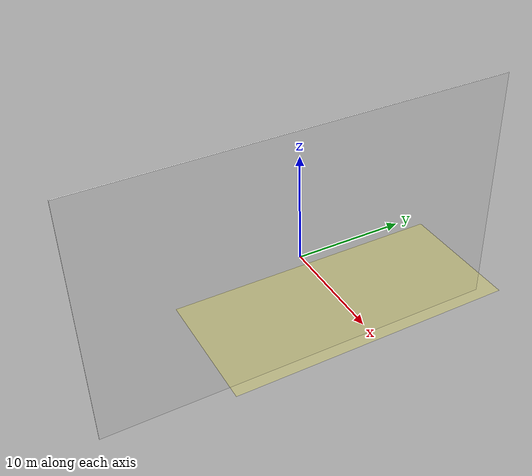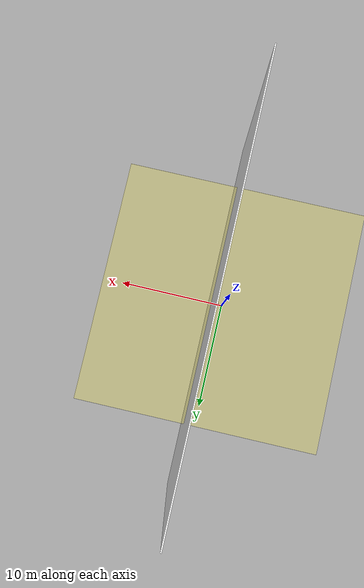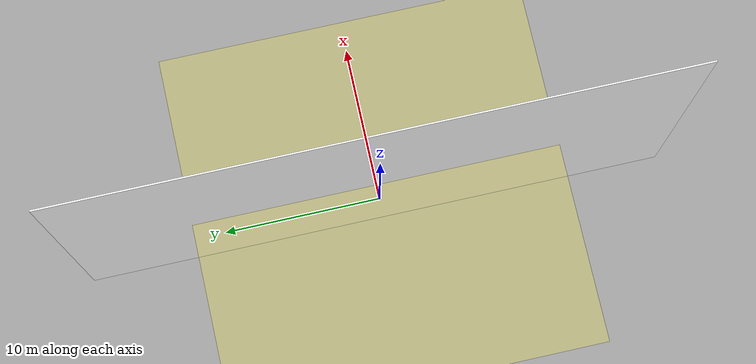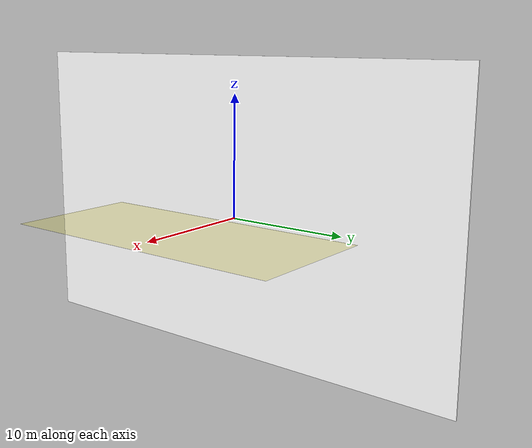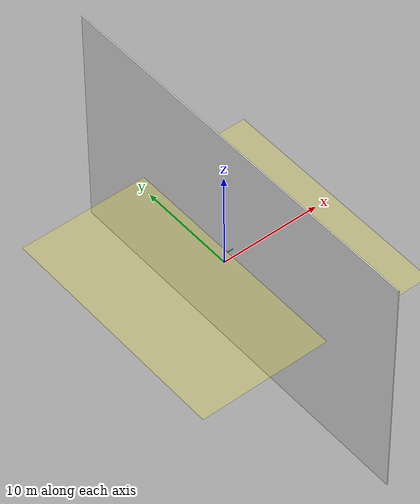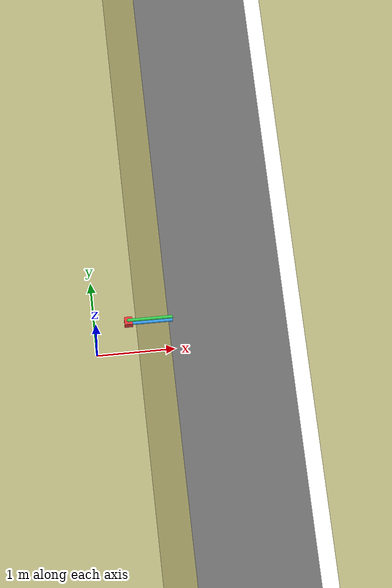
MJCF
<mujoco>
  <option timestep="0.005" gravity="0 0 -9.81"/>

  <worldbody>

    <!-- Floor  -->
    <geom type="plane" size="12 12 0.1"
          rgba="0.9 0.85 0.2 1"/>

    <!-- Wall  -->
    <geom type="box" size="0.05 20 12" pos="1.0 0 1"
          rgba="1.0 1.0 1.0 1" friction="1 1 1"/>

    <!-- Torso (red) -->
    <body name="torso" pos="0.404 0 1">
       <joint name="torso_slide_x" type="slide" axis="-1 0 0" damping="5"/>
      <joint name="torso_slide_z" type="slide" axis="0 0 1" damping="5"/>
      <geom type="box" size="0.05 0.05 0.05"
            rgba="0.85 0.2 0.2 1"/>

      <!-- Left leg (blue) -->
      <body name="left_leg" pos="0 0 -0.05">
        <joint name="hip_L" type="hinge" axis="0 1 0" range = "-22 22" damping="20"/>
        <geom type="capsule"
              fromto="0 0 0 0.596 0 0"
              size="0.02"
              rgba="0.2 0.6 0.9 1"/>
        <!-- Left tip (cyan) -->
        <site name="left_tip" pos="0.596 0 0" size="0.01"
              rgba="0.0 0.9 0.9 1"/>
      </body>

      <!-- Right leg (green) -->
      <body name="right_leg" pos="0 0 0.05">
        <joint name="hip_R" type="hinge" axis="0 1 0" range = "-22 22" damping="20"/>
        <geom type="capsule"
              fromto="0 0 0 0.596 0 0"
              size="0.02"
              rgba="0.2 0.8 0.3 1"/>
        <!-- Right tip (yellow) -->
        <site name="right_tip" pos="0.596 0 0" size="0.01"
              rgba="0.95 0.9 0.1 1"/>
      </body>

    </body>
  </worldbody>

  <!-- Actuators -->
  <actuator>
    <motor joint="hip_L" gear="70" ctrlrange="-1 1"/>
    <motor joint="hip_R" gear="70" ctrlrange="-1 1"/>
  </actuator>

</mujoco>
